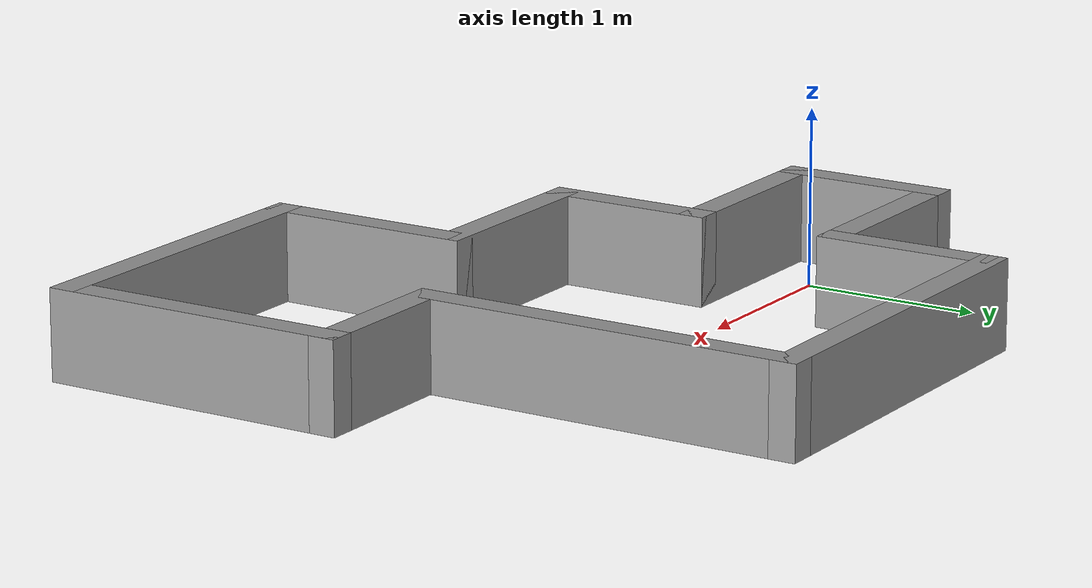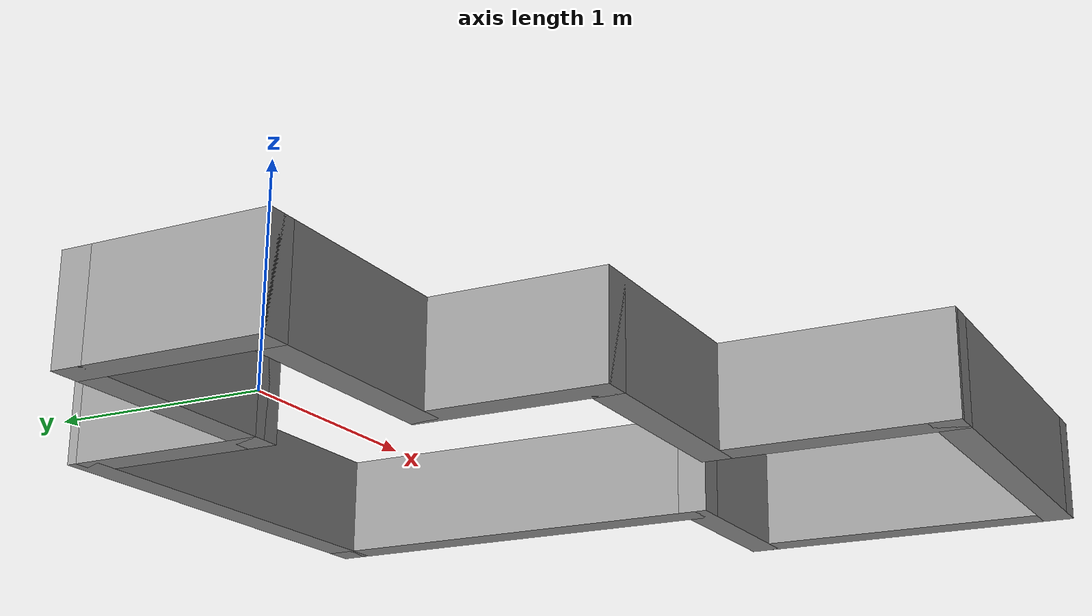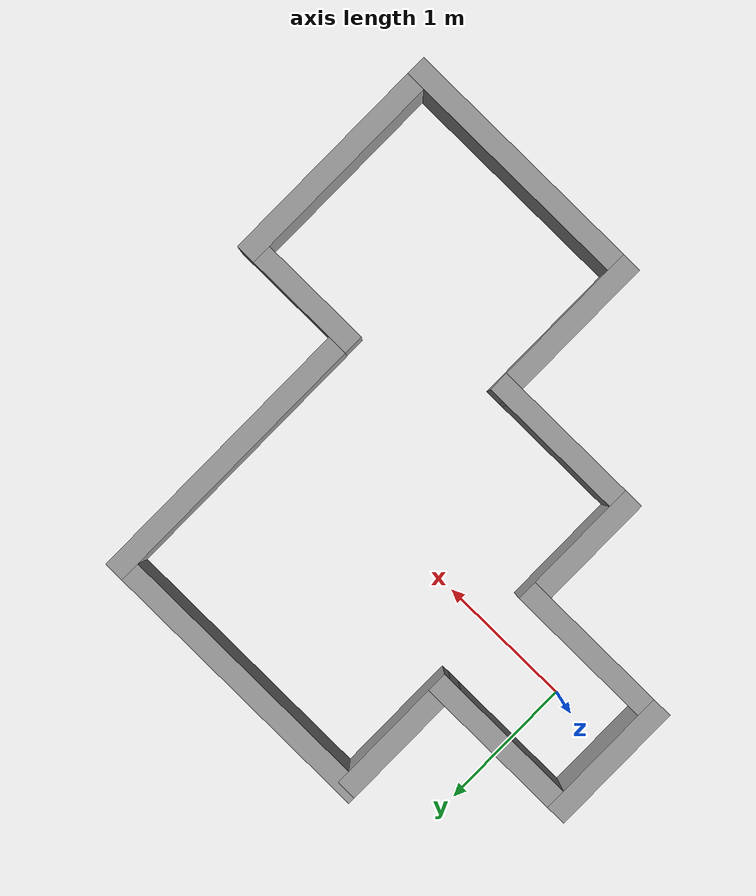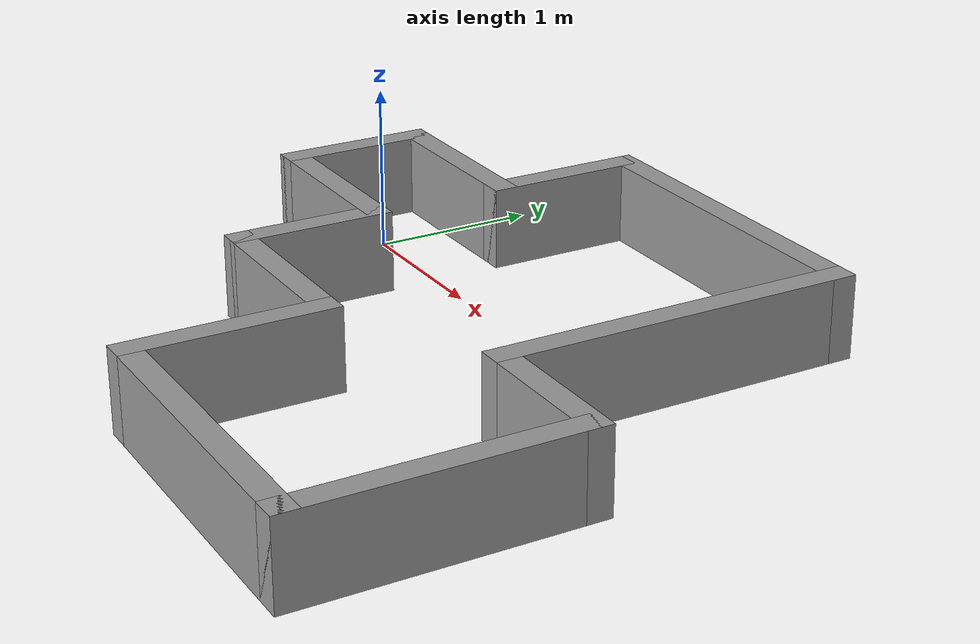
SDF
<?xml version='1.0'?>
<sdf version='1.7'>
  <model name='room1'>
    <pose>1.536 -0.459 0 0 -0 0</pose>
    <link name='Wall_19'>
      <collision name='Wall_19_Collision'>
        <geometry>
          <box>
            <size>1 0.15 0.5</size>
          </box>
        </geometry>
        <pose>0 0 0.25 0 -0 0</pose>
      </collision>
      <visual name='Wall_19_Visual'>
        <pose>0 0 0.25 0 -0 0</pose>
        <geometry>
          <box>
            <size>1 0.15 0.5</size>
          </box>
        </geometry>
        <material>
          <script>
            <uri>file://media/materials/scripts/gazebo.material</uri>
            <name>Gazebo/Grey</name>
          </script>
          <ambient>1 1 1 1</ambient>
        </material>
        <meta>
          <layer>0</layer>
        </meta>
      </visual>
      <pose>-2.025 0.525 0 0 -0 -1.5708</pose>
    </link>
    <link name='Wall_23'>
      <collision name='Wall_23_Collision'>
        <geometry>
          <box>
            <size>1.25 0.15 0.5</size>
          </box>
        </geometry>
        <pose>0 0 0.25 0 -0 0</pose>
      </collision>
      <visual name='Wall_23_Visual'>
        <pose>0 0 0.25 0 -0 0</pose>
        <geometry>
          <box>
            <size>1.25 0.15 0.5</size>
          </box>
        </geometry>
        <material>
          <script>
            <uri>file://media/materials/scripts/gazebo.material</uri>
            <name>Gazebo/Grey</name>
          </script>
          <ambient>1 1 1 1</ambient>
        </material>
        <meta>
          <layer>0</layer>
        </meta>
      </visual>
      <pose>-1.475 0.1 0 0 -0 0</pose>
    </link>
    <link name='Wall_78'>
      <collision name='Wall_78_Collision'>
        <geometry>
          <box>
            <size>1.25 0.15 0.5</size>
          </box>
        </geometry>
        <pose>0 0 0.25 0 -0 0</pose>
      </collision>
      <visual name='Wall_78_Visual'>
        <pose>0 0 0.25 0 -0 0</pose>
        <geometry>
          <box>
            <size>1.25 0.15 0.5</size>
          </box>
        </geometry>
        <material>
          <script>
            <uri>file://media/materials/scripts/gazebo.material</uri>
            <name>Gazebo/Grey</name>
          </script>
          <ambient>1 1 1 1</ambient>
        </material>
        <meta>
          <layer>0</layer>
        </meta>
      </visual>
      <pose>-1.475 0.95 0 0 -0 0</pose>
    </link>
    <link name='Wall_79'>
      <collision name='Wall_79_Collision'>
        <geometry>
          <box>
            <size>1 0.15 0.5</size>
          </box>
        </geometry>
        <pose>0 0 0.25 0 -0 0</pose>
      </collision>
      <visual name='Wall_79_Visual'>
        <pose>0 0 0.25 0 -0 0</pose>
        <geometry>
          <box>
            <size>1 0.15 0.5</size>
          </box>
        </geometry>
        <material>
          <script>
            <uri>file://media/materials/scripts/gazebo.material</uri>
            <name>Gazebo/Grey</name>
          </script>
          <ambient>1 1 1 1</ambient>
        </material>
        <meta>
          <layer>0</layer>
        </meta>
      </visual>
      <pose>-0.925 1.375 0 0 -0 1.5708</pose>
    </link>
    <link name='Wall_81'>
      <collision name='Wall_81_Collision'>
        <geometry>
          <box>
            <size>1 0.15 0.5</size>
          </box>
        </geometry>
        <pose>0 0 0.25 0 -0 0</pose>
      </collision>
      <visual name='Wall_81_Visual'>
        <pose>0 0 0.25 0 -0 0</pose>
        <geometry>
          <box>
            <size>1 0.15 0.5</size>
          </box>
        </geometry>
        <material>
          <script>
            <uri>file://media/materials/scripts/gazebo.material</uri>
            <name>Gazebo/Grey</name>
          </script>
          <ambient>1 1 1 1</ambient>
        </material>
        <meta>
          <layer>0</layer>
        </meta>
      </visual>
      <pose>-0.925 -0.325 0 0 -0 -1.5708</pose>
    </link>
    <link name='Wall_83'>
      <collision name='Wall_83_Collision'>
        <geometry>
          <box>
            <size>1.25 0.15 0.5</size>
          </box>
        </geometry>
        <pose>0 0 0.25 0 -0 0</pose>
      </collision>
      <visual name='Wall_83_Visual'>
        <pose>0 0 0.25 0 -0 0</pose>
        <geometry>
          <box>
            <size>1.25 0.15 0.5</size>
          </box>
        </geometry>
        <material>
          <script>
            <uri>file://media/materials/scripts/gazebo.material</uri>
            <name>Gazebo/Grey</name>
          </script>
          <ambient>1 1 1 1</ambient>
        </material>
        <meta>
          <layer>0</layer>
        </meta>
      </visual>
      <pose>-0.375 -0.75 0 0 -0 0</pose>
    </link>
    <link name='Wall_84'>
      <collision name='Wall_84_Collision'>
        <geometry>
          <box>
            <size>1.25 0.15 0.5</size>
          </box>
        </geometry>
        <pose>0 0 0.25 0 -0 0</pose>
      </collision>
      <visual name='Wall_84_Visual'>
        <pose>0 0 0.25 0 -0 0</pose>
        <geometry>
          <box>
            <size>1.25 0.15 0.5</size>
          </box>
        </geometry>
        <material>
          <script>
            <uri>file://media/materials/scripts/gazebo.material</uri>
            <name>Gazebo/Grey</name>
          </script>
          <ambient>1 1 1 1</ambient>
        </material>
        <meta>
          <layer>0</layer>
        </meta>
      </visual>
      <pose>0.175 -1.3 0 0 -0 -1.5708</pose>
    </link>
    <link name='Wall_85'>
      <collision name='Wall_85_Collision'>
        <geometry>
          <box>
            <size>2 0.15 0.5</size>
          </box>
        </geometry>
        <pose>0 0 0.25 0 -0 0</pose>
      </collision>
      <visual name='Wall_85_Visual'>
        <pose>0 0 0.25 0 -0 0</pose>
        <geometry>
          <box>
            <size>2 0.15 0.5</size>
          </box>
        </geometry>
        <material>
          <script>
            <uri>file://media/materials/scripts/gazebo.material</uri>
            <name>Gazebo/Grey</name>
          </script>
          <ambient>1 1 1 1</ambient>
        </material>
        <meta>
          <layer>0</layer>
        </meta>
      </visual>
      <pose>1.1 -1.85 0 0 -0 0</pose>
    </link>
    <link name='Wall_91'>
      <collision name='Wall_91_Collision'>
        <geometry>
          <box>
            <size>1.75 0.15 0.5</size>
          </box>
        </geometry>
        <pose>0 0 0.25 0 -0 0</pose>
      </collision>
      <visual name='Wall_91_Visual'>
        <pose>0 0 0.25 0 -0 0</pose>
        <geometry>
          <box>
            <size>1.75 0.15 0.5</size>
          </box>
        </geometry>
        <material>
          <script>
            <uri>file://media/materials/scripts/gazebo.material</uri>
            <name>Gazebo/Grey</name>
          </script>
          <ambient>1 1 1 1</ambient>
        </material>
        <meta>
          <layer>0</layer>
        </meta>
      </visual>
      <pose>2.025 -1.05 0 0 -0 1.5708</pose>
    </link>
    <link name='Wall_92'>
      <collision name='Wall_92_Collision'>
        <geometry>
          <box>
            <size>1 0.15 0.5</size>
          </box>
        </geometry>
        <pose>0 0 0.25 0 -0 0</pose>
      </collision>
      <visual name='Wall_92_Visual'>
        <pose>0 0 0.25 0 -0 0</pose>
        <geometry>
          <box>
            <size>1 0.15 0.5</size>
          </box>
        </geometry>
        <material>
          <script>
            <uri>file://media/materials/scripts/gazebo.material</uri>
            <name>Gazebo/Grey</name>
          </script>
          <ambient>1 1 1 1</ambient>
        </material>
        <meta>
          <layer>0</layer>
        </meta>
      </visual>
      <pose>1.6 -0.25 0 0 -0 3.14159</pose>
    </link>
    <link name='Wall_93'>
      <collision name='Wall_93_Collision'>
        <geometry>
          <box>
            <size>2.25 0.15 0.5</size>
          </box>
        </geometry>
        <pose>0 0 0.25 0 -0 0</pose>
      </collision>
      <visual name='Wall_93_Visual'>
        <pose>0 0 0.25 0 -0 0</pose>
        <geometry>
          <box>
            <size>2.25 0.15 0.5</size>
          </box>
        </geometry>
        <material>
          <script>
            <uri>file://media/materials/scripts/gazebo.material</uri>
            <name>Gazebo/Grey</name>
          </script>
          <ambient>1 1 1 1</ambient>
        </material>
        <meta>
          <layer>0</layer>
        </meta>
      </visual>
      <pose>1.175 0.8 0 0 -0 1.5708</pose>
    </link>
    <link name='Wall_94'>
      <collision name='Wall_94_Collision'>
        <geometry>
          <box>
            <size>2.25 0.15 0.5</size>
          </box>
        </geometry>
        <pose>0 0 0.25 0 -0 0</pose>
      </collision>
      <visual name='Wall_94_Visual'>
        <pose>0 0 0.25 0 -0 0</pose>
        <geometry>
          <box>
            <size>2.25 0.15 0.5</size>
          </box>
        </geometry>
        <material>
          <script>
            <uri>file://media/materials/scripts/gazebo.material</uri>
            <name>Gazebo/Grey</name>
          </script>
          <ambient>1 1 1 1</ambient>
        </material>
        <meta>
          <layer>0</layer>
        </meta>
      </visual>
      <pose>0.125 1.85 0 0 -0 3.14159</pose>
    </link>
    <static>1</static>
  </model>
</sdf>
